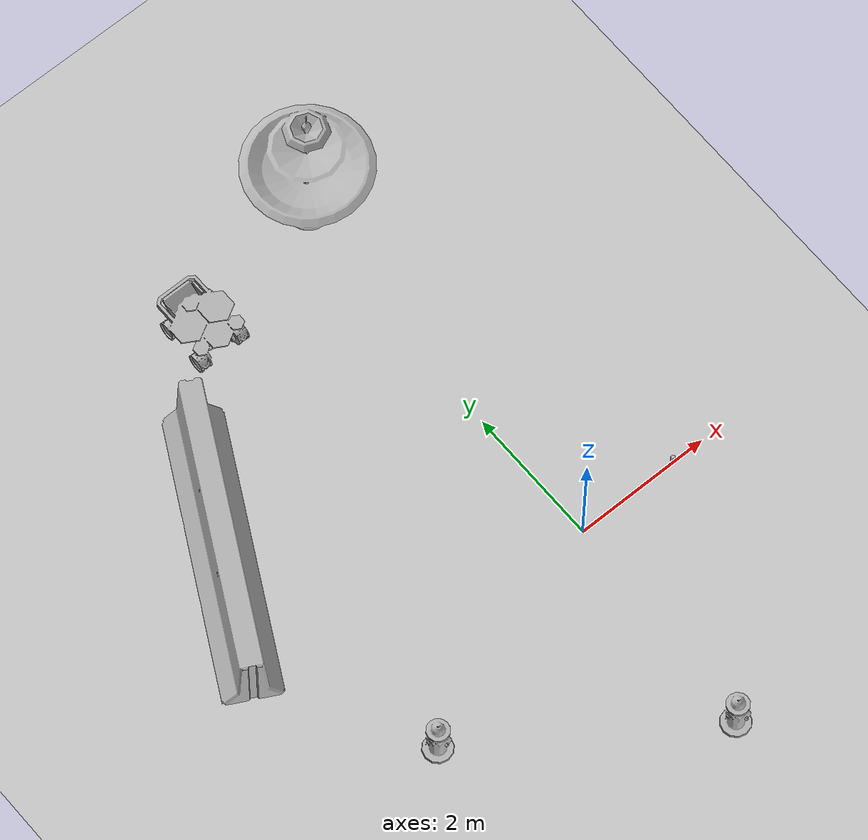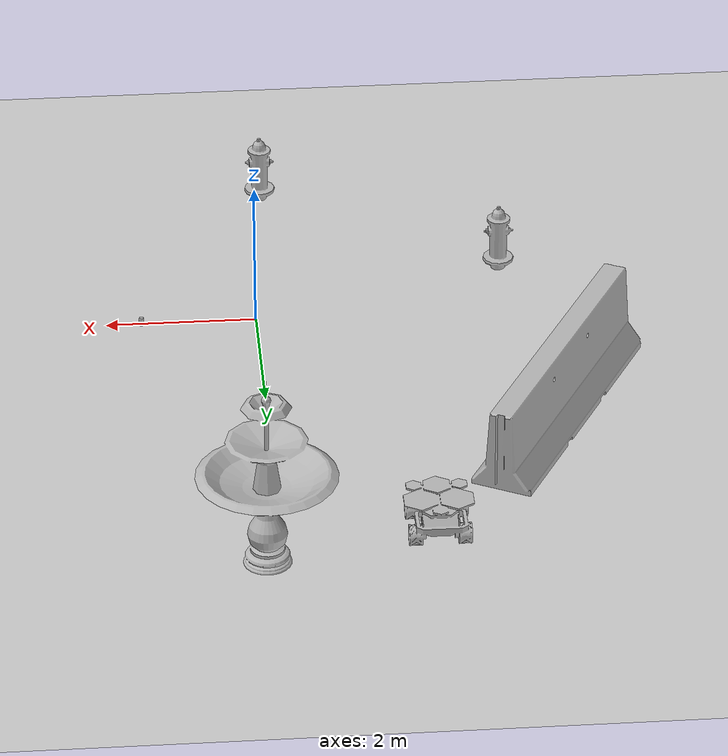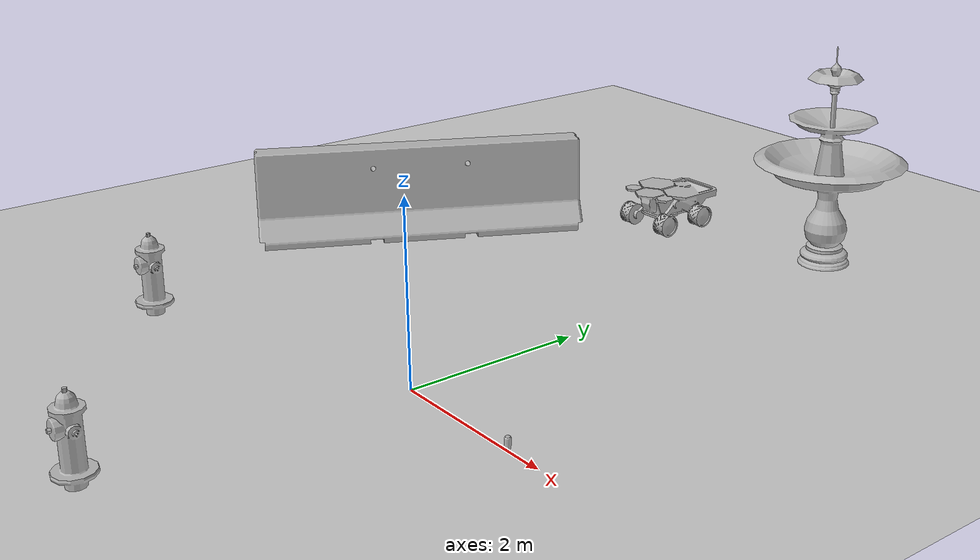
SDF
<sdf version="1.7">
 <world name="default">
  <light name="sun" type="directional">
   <pose>0 0 10 0 -0 0</pose>
   <diffuse>0.8 0.8 0.8 1</diffuse>
   <specular>0.2 0.2 0.2 1</specular>
   <attenuation>
    <range>1000</range>
    <constant>0.9</constant>
    <linear>0.01</linear>
    <quadratic>0.001</quadratic>
   </attenuation>
   <direction>-0.5 0.1 -0.9</direction>
   <spot><inner_angle>0</inner_angle><outer_angle>0</outer_angle><falloff>0</falloff></spot>
  </light>
  <model name="ground_plane">
   <static>1</static>
   <link name="link">
    <collision name="collision">
     <geometry><plane><normal>0 0 1</normal><size>100 100</size></plane></geometry>
     <surface>
      <contact><collide_bitmask>65535</collide_bitmask></contact>
      <friction><ode><mu>100</mu><mu2>50</mu2></ode></friction>
     </surface>
    </collision>
    <visual name="visual">
     <cast_shadows>0</cast_shadows>
     <geometry><plane><normal>0 0 1</normal><size>100 100</size></plane></geometry>
     <material>
      <script><uri>file://media/materials/scripts/gazebo.material</uri><name>Gazebo/Grey</name></script>
     </material>
    </visual>
   </link>
  </model>
  <gravity>0 0 -9.8</gravity>
  <magnetic_field>6e-06 2.3e-05 -4.2e-05</magnetic_field>
  <atmosphere type="adiabatic"/>
  <physics type="ode">
   <max_step_size>0.001</max_step_size>
   <real_time_factor>1</real_time_factor>
   <real_time_update_rate>1000</real_time_update_rate>
  </physics>
  <scene><ambient>0.4 0.4 0.4 1</ambient><background>0.7 0.7 0.7 1</background><shadows>1</shadows></scene>
  <audio><device>default</device></audio>
  <spherical_coordinates>
   <surface_model>EARTH_WGS84</surface_model>
   <latitude_deg>0</latitude_deg>
   <longitude_deg>0</longitude_deg>
   <elevation>0</elevation>
   <heading_deg>0</heading_deg>
  </spherical_coordinates>
  <model name="coke_can">
   <link name="link">
    <inertial>
     <pose>0 0 0.06 0 -0 0</pose>
     <mass>0.39</mass>
     <inertia>
      <ixx>0.00055575</ixx>
      <ixy>0</ixy>
      <ixz>0</ixz>
      <iyy>0.00055575</iyy>
      <iyz>0</iyz>
      <izz>0.0001755</izz>
     </inertia>
    </inertial>
    <collision name="collision">
     <pose>0.003937 0.004724 -0.18 0 -0 0</pose>
     <geometry><mesh><uri>model://coke_can/meshes/coke_can.dae</uri></mesh></geometry>
     <surface>
      <friction><ode><mu>1</mu><mu2>1</mu2></ode></friction>
      <contact><ode><kp>1e+07</kp><kd>1</kd><min_depth>0.001</min_depth><max_vel>0.1</max_vel></ode></contact>
     </surface>
    </collision>
    <visual name="visual">
     <pose>0.003937 0.004724 -0.18 0 -0 0</pose>
     <geometry><mesh><uri>model://coke_can/meshes/coke_can.dae</uri></mesh></geometry>
    </visual>
   </link>
   <pose>1.5314 0.020281 -0.003156 -0.054229 -0.008152 -0.000734</pose>
  </model>
  <model name="fire_hydrant">
   <static>1</static>
   <link name="link">
    <collision name="collision">
     <geometry><mesh><uri>model://fire_hydrant/meshes/fire_hydrant.dae</uri></mesh></geometry>
    </collision>
    <visual name="visual">
     <geometry><mesh><uri>model://fire_hydrant/meshes/fire_hydrant.dae</uri></mesh></geometry>
    </visual>
   </link>
   <pose>-0.257328 -3.25416 0 0 -0 0</pose>
  </model>
  <model name="fire_hydrant_0">
   <static>1</static>
   <link name="link">
    <collision name="collision">
     <geometry><mesh><uri>model://fire_hydrant/meshes/fire_hydrant.dae</uri></mesh></geometry>
    </collision>
    <visual name="visual">
     <geometry><mesh><uri>model://fire_hydrant/meshes/fire_hydrant.dae</uri></mesh></geometry>
    </visual>
   </link>
   <pose>-3.3643 -1.13177 0 0 -0 0</pose>
  </model>
  <model name="fountain">
   <static>1</static>
   <link name="link">
    <collision name="collision">
     <geometry><mesh><uri>model://fountain/meshes/fountain.dae</uri></mesh></geometry>
    </collision>
    <visual name="visual">
     <geometry><mesh><uri>model://fountain/meshes/fountain.dae</uri></mesh></geometry>
    </visual>
   </link>
   <pose>0.218715 5.79272 0 0 -0 0</pose>
  </model>
  <model name="mars_rover">
   <static>1</static>
   <link name="link">
    <collision name="solar_panel_collision">
     <pose>0 -0.06945 0.47293 0 -0 0</pose>
     <geometry><box><size>0.87974 0.8821 0.02602</size></box></geometry>
    </collision>
    <collision name="chassis_collision">
     <pose>0 -0.05 0.31475 0 -0 0</pose>
     <geometry><box><size>0.49522 0.67401 0.28915</size></box></geometry>
    </collision>
    <collision name="rear_left_bumper_collision">
     <pose>0.30107 0.3835 0.38976 0 -0 0</pose>
     <geometry><box><size>0.04442 0.38897 0.07918</size></box></geometry>
    </collision>
    <collision name="rear_right_bumper_collision">
     <pose>-0.30107 0.3835 0.38976 0 -0 0</pose>
     <geometry><box><size>0.04442 0.38897 0.07918</size></box></geometry>
    </collision>
    <collision name="rear_bumper_collision">
     <pose>0 0.59414 0.38976 0 -0 0</pose>
     <geometry><box><size>0.56656 0.04442 0.07918</size></box></geometry>
    </collision>
    <collision name="bin_back_panel_collision">
     <pose>0 0.47 0.32114 0.69137 -0 0</pose>
     <geometry><box><size>0.43774 0.212366 0.05173</size></box></geometry>
    </collision>
    <collision name="bin_left_panel_collision1">
     <pose>0.22615 0.32897 0.33193 0 -0 0</pose>
     <geometry><box><size>0.01116 0.19338 0.16304</size></box></geometry>
    </collision>
    <collision name="bin_left_panel_collision2">
     <pose>0.22615 0.471 0.39308 0 -0 0</pose>
     <geometry><box><size>0.01116 0.15 0.04</size></box></geometry>
    </collision>
    <collision name="bin_left_panel_collision3">
     <pose>0.22615 0.45 0.35308 0 -0 0</pose>
     <geometry><box><size>0.01116 0.15 0.04</size></box></geometry>
    </collision>
    <collision name="bin_left_panel_collision4">
     <pose>0.22615 0.39308 0.31308 0 -0 0</pose>
     <geometry><box><size>0.01116 0.15 0.04</size></box></geometry>
    </collision>
    <collision name="bin_right_panel_collision1">
     <pose>-0.22615 0.32897 0.33193 0 -0 0</pose>
     <geometry><box><size>0.01116 0.19338 0.16304</size></box></geometry>
    </collision>
    <collision name="bin_right_panel_collision2">
     <pose>-0.22615 0.471 0.39308 0 -0 0</pose>
     <geometry><box><size>0.01116 0.15 0.04</size></box></geometry>
    </collision>
    <collision name="bin_right_panel_collision3">
     <pose>-0.22615 0.45 0.35308 0 -0 0</pose>
     <geometry><box><size>0.01116 0.15 0.04</size></box></geometry>
    </collision>
    <collision name="bin_right_panel_collision4">
     <pose>-0.22615 0.39308 0.31308 0 -0 0</pose>
     <geometry><box><size>0.01116 0.15 0.04</size></box></geometry>
    </collision>
    <collision name="bin_front_panel_collision">
     <pose>0 0.30047 0.32114 2.26207 -0 0</pose>
     <geometry><box><size>0.43774 0.212366 0.05173</size></box></geometry>
    </collision>
    <collision name="front_left_wheel_collision">
     <pose>0.31103 -0.32115 0.1358 1.5707 0 1.5707</pose>
     <geometry><cylinder><radius>0.1358</radius><length>0.1641</length></cylinder></geometry>
    </collision>
    <collision name="front_right_wheel_collision">
     <pose>-0.31103 -0.32115 0.1358 1.5707 0 1.5707</pose>
     <geometry><cylinder><radius>0.1358</radius><length>0.1641</length></cylinder></geometry>
    </collision>
    <collision name="rear_left_wheel_collision">
     <pose>0.31103 0.28049 0.1358 1.5707 0 1.5707</pose>
     <geometry><cylinder><radius>0.1358</radius><length>0.1641</length></cylinder></geometry>
    </collision>
    <collision name="rear_right_wheel_collision">
     <pose>-0.31103 0.28049 0.1358 1.5707 0 1.5707</pose>
     <geometry><cylinder><radius>0.1358</radius><length>0.1641</length></cylinder></geometry>
    </collision>
    <visual name="visual">
     <geometry><mesh><uri>model://mars_rover/meshes/rover.dae</uri></mesh></geometry>
    </visual>
   </link>
   <pose>-1.9656 5.26763 0 0 -0 0</pose>
  </model>
  <model name="jersey_barrier">
   <static>1</static>
   <link name="link">
    <visual name="visual">
     <geometry><mesh><uri>model://jersey_barrier/meshes/jersey_barrier.dae</uri></mesh></geometry>
    </visual>
    <collision name="upright">
     <pose>0 0 0.5715 0 -0 0</pose>
     <geometry><box><size>4.06542 0.3063 1.143</size></box></geometry>
    </collision>
    <collision name="base">
     <pose>0 0 0.032258 0 -0 0</pose>
     <geometry><box><size>4.06542 0.8107 0.064516</size></box></geometry>
    </collision>
    <collision name="base2">
     <pose>0 0 0.1 0 -0 0</pose>
     <geometry><box><size>4.06542 0.65 0.1</size></box></geometry>
    </collision>
    <collision name="base3">
     <pose>0 0 0.2 0 -0 0</pose>
     <geometry><box><size>4.06542 0.5 0.1</size></box></geometry>
    </collision>
    <collision name="left-angle">
     <pose>0 -0.224 0.2401 0.9 -0 0</pose>
     <geometry><box><size>4.06542 0.5 0.064516</size></box></geometry>
    </collision>
    <collision name="right-angle">
     <pose>0 0.224 0.2401 -0.9 0 0</pose>
     <geometry><box><size>4.06542 0.5 0.064516</size></box></geometry>
    </collision>
   </link>
   <pose>-3.76395 2.65978 0 0 -0 1.08591</pose>
  </model>
 </world>
</sdf>
